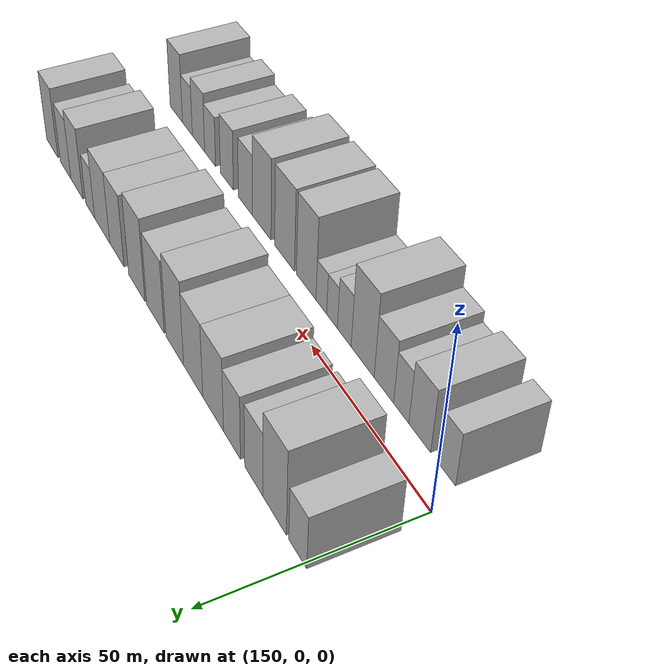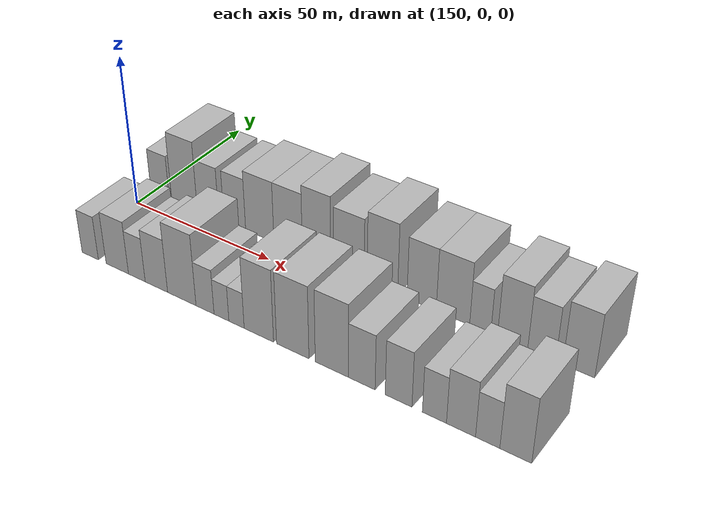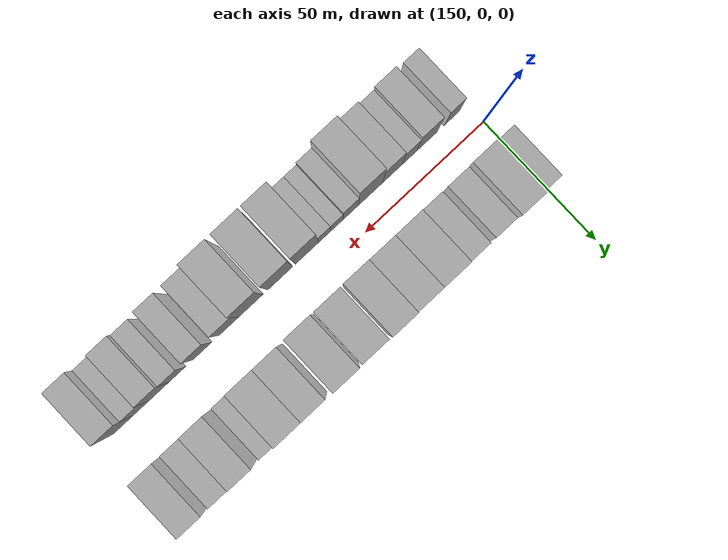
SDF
<sdf version="1.6">
 <world name="default">
  <model name="building_16">
   <static>1</static>
   <pose>152.4874 17.5000 0 0.000000 0.000000 1.570796</pose>
   <link name="link">
    <pose>0 0 7.50 0 0 0</pose>
    <collision name="collision"><geometry><box><size>20.0000 7.4232 15.0000</size></box></geometry></collision>
    <visual name="visual">
     <cast_shadows>0</cast_shadows>
     <geometry><box><size>20.0000 7.4232 15.0000</size></box></geometry>
     <material>
      <script>
       <uri>model://HANNAS_wall/materials/scripts</uri>
       <uri>model://HANNAS_wall/materials/textures</uri>
       <name>vrc/HANNAS_wall</name>
      </script>
     </material>
    </visual>
   </link>
  </model>
  <model name="building_17">
   <static>1</static>
   <pose>162.2632 17.5000 0 0.000000 0.000000 1.570796</pose>
   <link name="link">
    <pose>0 0 12.00 0 0 0</pose>
    <collision name="collision"><geometry><box><size>20.0000 10.1284 24.0000</size></box></geometry></collision>
    <visual name="visual">
     <cast_shadows>0</cast_shadows>
     <geometry><box><size>20.0000 10.1284 24.0000</size></box></geometry>
     <material>
      <script>
       <uri>model://HANNAS_wall/materials/scripts</uri>
       <uri>model://HANNAS_wall/materials/textures</uri>
       <name>vrc/HANNAS_wall</name>
      </script>
     </material>
    </visual>
   </link>
  </model>
  <model name="building_18">
   <static>1</static>
   <pose>171.4944 17.5000 0 0.000000 0.000000 1.570796</pose>
   <link name="link">
    <pose>0 0 9.00 0 0 0</pose>
    <collision name="collision"><geometry><box><size>20.0000 8.3341 18.0000</size></box></geometry></collision>
    <visual name="visual">
     <cast_shadows>0</cast_shadows>
     <geometry><box><size>20.0000 8.3341 18.0000</size></box></geometry>
     <material>
      <script>
       <uri>model://HANNAS_wall/materials/scripts</uri>
       <uri>model://HANNAS_wall/materials/textures</uri>
       <name>vrc/HANNAS_wall</name>
      </script>
     </material>
    </visual>
   </link>
  </model>
  <model name="building_19">
   <static>1</static>
   <pose>181.7442 17.5000 0 0.000000 0.000000 1.570796</pose>
   <link name="link">
    <pose>0 0 9.00 0 0 0</pose>
    <collision name="collision"><geometry><box><size>20.0000 8.1655 18.0000</size></box></geometry></collision>
    <visual name="visual">
     <cast_shadows>0</cast_shadows>
     <geometry><box><size>20.0000 8.1655 18.0000</size></box></geometry>
     <material>
      <script>
       <uri>model://HANNAS_wall/materials/scripts</uri>
       <uri>model://HANNAS_wall/materials/textures</uri>
       <name>vrc/HANNAS_wall</name>
      </script>
     </material>
    </visual>
   </link>
  </model>
  <model name="building_20">
   <static>1</static>
   <pose>191.0521 17.5000 0 0.000000 0.000000 1.570796</pose>
   <link name="link">
    <pose>0 0 10.50 0 0 0</pose>
    <collision name="collision"><geometry><box><size>20.0000 10.4504 21.0000</size></box></geometry></collision>
    <visual name="visual">
     <cast_shadows>0</cast_shadows>
     <geometry><box><size>20.0000 10.4504 21.0000</size></box></geometry>
     <material>
      <script>
       <uri>model://HANNAS_wall/materials/scripts</uri>
       <uri>model://HANNAS_wall/materials/textures</uri>
       <name>vrc/HANNAS_wall</name>
      </script>
     </material>
    </visual>
   </link>
  </model>
  <model name="building_21">
   <static>1</static>
   <pose>201.3887 17.5000 0 0.000000 0.000000 1.570796</pose>
   <link name="link">
    <pose>0 0 10.50 0 0 0</pose>
    <collision name="collision"><geometry><box><size>20.0000 10.2229 21.0000</size></box></geometry></collision>
    <visual name="visual">
     <cast_shadows>0</cast_shadows>
     <geometry><box><size>20.0000 10.2229 21.0000</size></box></geometry>
     <material>
      <script>
       <uri>model://HANNAS_wall/materials/scripts</uri>
       <uri>model://HANNAS_wall/materials/textures</uri>
       <name>vrc/HANNAS_wall</name>
      </script>
     </material>
    </visual>
   </link>
  </model>
  <model name="building_22">
   <static>1</static>
   <pose>211.4315 17.5000 0 0.000000 0.000000 1.570796</pose>
   <link name="link">
    <pose>0 0 12.00 0 0 0</pose>
    <collision name="collision"><geometry><box><size>20.0000 9.8627 24.0000</size></box></geometry></collision>
    <visual name="visual">
     <cast_shadows>0</cast_shadows>
     <geometry><box><size>20.0000 9.8627 24.0000</size></box></geometry>
     <material>
      <script>
       <uri>model://HANNAS_wall/materials/scripts</uri>
       <uri>model://HANNAS_wall/materials/textures</uri>
       <name>vrc/HANNAS_wall</name>
      </script>
     </material>
    </visual>
   </link>
  </model>
  <model name="building_23">
   <static>1</static>
   <pose>222.5453 17.5000 0 0.000000 0.000000 1.570796</pose>
   <link name="link">
    <pose>0 0 10.50 0 0 0</pose>
    <collision name="collision"><geometry><box><size>20.0000 10.3650 21.0000</size></box></geometry></collision>
    <visual name="visual">
     <cast_shadows>0</cast_shadows>
     <geometry><box><size>20.0000 10.3650 21.0000</size></box></geometry>
     <material>
      <script>
       <uri>model://HANNAS_wall/materials/scripts</uri>
       <uri>model://HANNAS_wall/materials/textures</uri>
       <name>vrc/HANNAS_wall</name>
      </script>
     </material>
    </visual>
   </link>
  </model>
  <model name="building_24">
   <static>1</static>
   <pose>233.7784 17.5000 0 0.000000 0.000000 1.570796</pose>
   <link name="link">
    <pose>0 0 12.00 0 0 0</pose>
    <collision name="collision"><geometry><box><size>20.0000 10.1011 24.0000</size></box></geometry></collision>
    <visual name="visual">
     <cast_shadows>0</cast_shadows>
     <geometry><box><size>20.0000 10.1011 24.0000</size></box></geometry>
     <material>
      <script>
       <uri>model://HANNAS_wall/materials/scripts</uri>
       <uri>model://HANNAS_wall/materials/textures</uri>
       <name>vrc/HANNAS_wall</name>
      </script>
     </material>
    </visual>
   </link>
  </model>
  <model name="building_25">
   <static>1</static>
   <pose>246.5001 17.5000 0 0.000000 0.000000 1.570796</pose>
   <link name="link">
    <pose>0 0 10.50 0 0 0</pose>
    <collision name="collision"><geometry><box><size>20.0000 9.3423 21.0000</size></box></geometry></collision>
    <visual name="visual">
     <cast_shadows>0</cast_shadows>
     <geometry><box><size>20.0000 9.3423 21.0000</size></box></geometry>
     <material>
      <script>
       <uri>model://HANNAS_wall/materials/scripts</uri>
       <uri>model://HANNAS_wall/materials/textures</uri>
       <name>vrc/HANNAS_wall</name>
      </script>
     </material>
    </visual>
   </link>
  </model>
  <model name="building_26">
   <static>1</static>
   <pose>256.3676 17.5000 0 0.000000 0.000000 1.570796</pose>
   <link name="link">
    <pose>0 0 10.50 0 0 0</pose>
    <collision name="collision"><geometry><box><size>20.0000 10.3927 21.0000</size></box></geometry></collision>
    <visual name="visual">
     <cast_shadows>0</cast_shadows>
     <geometry><box><size>20.0000 10.3927 21.0000</size></box></geometry>
     <material>
      <script>
       <uri>model://HANNAS_wall/materials/scripts</uri>
       <uri>model://HANNAS_wall/materials/textures</uri>
       <name>vrc/HANNAS_wall</name>
      </script>
     </material>
    </visual>
   </link>
  </model>
  <model name="building_27">
   <static>1</static>
   <pose>264.7600 17.5000 0 0.000000 0.000000 1.570796</pose>
   <link name="link">
    <pose>0 0 7.50 0 0 0</pose>
    <collision name="collision"><geometry><box><size>20.0000 6.3921 15.0000</size></box></geometry></collision>
    <visual name="visual">
     <cast_shadows>0</cast_shadows>
     <geometry><box><size>20.0000 6.3921 15.0000</size></box></geometry>
     <material>
      <script>
       <uri>model://HANNAS_wall/materials/scripts</uri>
       <uri>model://HANNAS_wall/materials/textures</uri>
       <name>vrc/HANNAS_wall</name>
      </script>
     </material>
    </visual>
   </link>
  </model>
  <model name="building_28">
   <static>1</static>
   <pose>274.4199 17.5000 0 0.000000 0.000000 1.570796</pose>
   <link name="link">
    <pose>0 0 10.50 0 0 0</pose>
    <collision name="collision"><geometry><box><size>20.0000 8.9277 21.0000</size></box></geometry></collision>
    <visual name="visual">
     <cast_shadows>0</cast_shadows>
     <geometry><box><size>20.0000 8.9277 21.0000</size></box></geometry>
     <material>
      <script>
       <uri>model://HANNAS_wall/materials/scripts</uri>
       <uri>model://HANNAS_wall/materials/textures</uri>
       <name>vrc/HANNAS_wall</name>
      </script>
     </material>
    </visual>
   </link>
  </model>
  <model name="building_29">
   <static>1</static>
   <pose>282.9135 17.5000 0 0.000000 0.000000 1.570796</pose>
   <link name="link">
    <pose>0 0 9.00 0 0 0</pose>
    <collision name="collision"><geometry><box><size>20.0000 8.0595 18.0000</size></box></geometry></collision>
    <visual name="visual">
     <cast_shadows>0</cast_shadows>
     <geometry><box><size>20.0000 8.0595 18.0000</size></box></geometry>
     <material>
      <script>
       <uri>model://HANNAS_wall/materials/scripts</uri>
       <uri>model://HANNAS_wall/materials/textures</uri>
       <name>vrc/HANNAS_wall</name>
      </script>
     </material>
    </visual>
   </link>
  </model>
  <model name="building_30">
   <static>1</static>
   <pose>293.4200 17.5000 0 0.000000 0.000000 1.570796</pose>
   <link name="link">
    <pose>0 0 10.50 0 0 0</pose>
    <collision name="collision"><geometry><box><size>20.0000 8.9536 21.0000</size></box></geometry></collision>
    <visual name="visual">
     <cast_shadows>0</cast_shadows>
     <geometry><box><size>20.0000 8.9536 21.0000</size></box></geometry>
     <material>
      <script>
       <uri>model://HANNAS_wall/materials/scripts</uri>
       <uri>model://HANNAS_wall/materials/textures</uri>
       <name>vrc/HANNAS_wall</name>
      </script>
     </material>
    </visual>
   </link>
  </model>
  <model name="building_46">
   <static>1</static>
   <pose>156.6527 -17.5000 0 0.000000 0.000000 1.570796</pose>
   <link name="link">
    <pose>0 0 7.50 0 0 0</pose>
    <collision name="collision"><geometry><box><size>20.0000 6.3372 15.0000</size></box></geometry></collision>
    <visual name="visual">
     <cast_shadows>0</cast_shadows>
     <geometry><box><size>20.0000 6.3372 15.0000</size></box></geometry>
     <material>
      <script>
       <uri>model://HANNAS_wall/materials/scripts</uri>
       <uri>model://HANNAS_wall/materials/textures</uri>
       <name>vrc/HANNAS_wall</name>
      </script>
     </material>
    </visual>
   </link>
  </model>
  <model name="building_47">
   <static>1</static>
   <pose>167.0912 -17.5000 0 0.000000 0.000000 1.570796</pose>
   <link name="link">
    <pose>0 0 9.00 0 0 0</pose>
    <collision name="collision"><geometry><box><size>20.0000 8.5398 18.0000</size></box></geometry></collision>
    <visual name="visual">
     <cast_shadows>0</cast_shadows>
     <geometry><box><size>20.0000 8.5398 18.0000</size></box></geometry>
     <material>
      <script>
       <uri>model://HANNAS_wall/materials/scripts</uri>
       <uri>model://HANNAS_wall/materials/textures</uri>
       <name>vrc/HANNAS_wall</name>
      </script>
     </material>
    </visual>
   </link>
  </model>
  <model name="building_48">
   <static>1</static>
   <pose>174.4822 -17.5000 0 0.000000 0.000000 1.570796</pose>
   <link name="link">
    <pose>0 0 7.50 0 0 0</pose>
    <collision name="collision"><geometry><box><size>20.0000 6.2421 15.0000</size></box></geometry></collision>
    <visual name="visual">
     <cast_shadows>0</cast_shadows>
     <geometry><box><size>20.0000 6.2421 15.0000</size></box></geometry>
     <material>
      <script>
       <uri>model://HANNAS_wall/materials/scripts</uri>
       <uri>model://HANNAS_wall/materials/textures</uri>
       <name>vrc/HANNAS_wall</name>
      </script>
     </material>
    </visual>
   </link>
  </model>
  <model name="building_49">
   <static>1</static>
   <pose>181.7102 -17.5000 0 0.000000 0.000000 1.570796</pose>
   <link name="link">
    <pose>0 0 9.00 0 0 0</pose>
    <collision name="collision"><geometry><box><size>20.0000 8.2139 18.0000</size></box></geometry></collision>
    <visual name="visual">
     <cast_shadows>0</cast_shadows>
     <geometry><box><size>20.0000 8.2139 18.0000</size></box></geometry>
     <material>
      <script>
       <uri>model://HANNAS_wall/materials/scripts</uri>
       <uri>model://HANNAS_wall/materials/textures</uri>
       <name>vrc/HANNAS_wall</name>
      </script>
     </material>
    </visual>
   </link>
  </model>
  <model name="building_50">
   <static>1</static>
   <pose>190.8973 -17.5000 0 0.000000 0.000000 1.570796</pose>
   <link name="link">
    <pose>0 0 12.00 0 0 0</pose>
    <collision name="collision"><geometry><box><size>20.0000 10.1602 24.0000</size></box></geometry></collision>
    <visual name="visual">
     <cast_shadows>0</cast_shadows>
     <geometry><box><size>20.0000 10.1602 24.0000</size></box></geometry>
     <material>
      <script>
       <uri>model://HANNAS_wall/materials/scripts</uri>
       <uri>model://HANNAS_wall/materials/textures</uri>
       <name>vrc/HANNAS_wall</name>
      </script>
     </material>
    </visual>
   </link>
  </model>
  <model name="building_51">
   <static>1</static>
   <pose>199.1300 -17.5000 0 0.000000 0.000000 1.570796</pose>
   <link name="link">
    <pose>0 0 7.50 0 0 0</pose>
    <collision name="collision"><geometry><box><size>20.0000 6.3051 15.0000</size></box></geometry></collision>
    <visual name="visual">
     <cast_shadows>0</cast_shadows>
     <geometry><box><size>20.0000 6.3051 15.0000</size></box></geometry>
     <material>
      <script>
       <uri>model://HANNAS_wall/materials/scripts</uri>
       <uri>model://HANNAS_wall/materials/textures</uri>
       <name>vrc/HANNAS_wall</name>
      </script>
     </material>
    </visual>
   </link>
  </model>
  <model name="building_52">
   <static>1</static>
   <pose>204.8406 -17.5000 0 0.000000 0.000000 1.570796</pose>
   <link name="link">
    <pose>0 0 6.00 0 0 0</pose>
    <collision name="collision"><geometry><box><size>20.0000 5.1161 12.0000</size></box></geometry></collision>
    <visual name="visual">
     <cast_shadows>0</cast_shadows>
     <geometry><box><size>20.0000 5.1161 12.0000</size></box></geometry>
     <material>
      <script>
       <uri>model://HANNAS_wall/materials/scripts</uri>
       <uri>model://HANNAS_wall/materials/textures</uri>
       <name>vrc/HANNAS_wall</name>
      </script>
     </material>
    </visual>
   </link>
  </model>
  <model name="building_53">
   <static>1</static>
   <pose>209.9921 -17.5000 0 0.000000 0.000000 1.570796</pose>
   <link name="link">
    <pose>0 0 6.00 0 0 0</pose>
    <collision name="collision"><geometry><box><size>20.0000 5.1870 12.0000</size></box></geometry></collision>
    <visual name="visual">
     <cast_shadows>0</cast_shadows>
     <geometry><box><size>20.0000 5.1870 12.0000</size></box></geometry>
     <material>
      <script>
       <uri>model://HANNAS_wall/materials/scripts</uri>
       <uri>model://HANNAS_wall/materials/textures</uri>
       <name>vrc/HANNAS_wall</name>
      </script>
     </material>
    </visual>
   </link>
  </model>
  <model name="building_54">
   <static>1</static>
   <pose>217.4739 -17.5000 0 0.000000 0.000000 1.570796</pose>
   <link name="link">
    <pose>0 0 12.00 0 0 0</pose>
    <collision name="collision"><geometry><box><size>20.0000 9.7765 24.0000</size></box></geometry></collision>
    <visual name="visual">
     <cast_shadows>0</cast_shadows>
     <geometry><box><size>20.0000 9.7765 24.0000</size></box></geometry>
     <material>
      <script>
       <uri>model://HANNAS_wall/materials/scripts</uri>
       <uri>model://HANNAS_wall/materials/textures</uri>
       <name>vrc/HANNAS_wall</name>
      </script>
     </material>
    </visual>
   </link>
  </model>
  <model name="building_55">
   <static>1</static>
   <pose>228.5708 -17.5000 0 0.000000 0.000000 1.570796</pose>
   <link name="link">
    <pose>0 0 12.00 0 0 0</pose>
    <collision name="collision"><geometry><box><size>20.0000 10.4175 24.0000</size></box></geometry></collision>
    <visual name="visual">
     <cast_shadows>0</cast_shadows>
     <geometry><box><size>20.0000 10.4175 24.0000</size></box></geometry>
     <material>
      <script>
       <uri>model://HANNAS_wall/materials/scripts</uri>
       <uri>model://HANNAS_wall/materials/textures</uri>
       <name>vrc/HANNAS_wall</name>
      </script>
     </material>
    </visual>
   </link>
  </model>
  <model name="building_56">
   <static>1</static>
   <pose>240.9191 -17.5000 0 0.000000 0.000000 1.570796</pose>
   <link name="link">
    <pose>0 0 12.00 0 0 0</pose>
    <collision name="collision"><geometry><box><size>20.0000 10.2790 24.0000</size></box></geometry></collision>
    <visual name="visual">
     <cast_shadows>0</cast_shadows>
     <geometry><box><size>20.0000 10.2790 24.0000</size></box></geometry>
     <material>
      <script>
       <uri>model://HANNAS_wall/materials/scripts</uri>
       <uri>model://HANNAS_wall/materials/textures</uri>
       <name>vrc/HANNAS_wall</name>
      </script>
     </material>
    </visual>
   </link>
  </model>
  <model name="building_57">
   <static>1</static>
   <pose>250.1173 -17.5000 0 0.000000 0.000000 1.570796</pose>
   <link name="link">
    <pose>0 0 9.00 0 0 0</pose>
    <collision name="collision"><geometry><box><size>20.0000 8.1175 18.0000</size></box></geometry></collision>
    <visual name="visual">
     <cast_shadows>0</cast_shadows>
     <geometry><box><size>20.0000 8.1175 18.0000</size></box></geometry>
     <material>
      <script>
       <uri>model://HANNAS_wall/materials/scripts</uri>
       <uri>model://HANNAS_wall/materials/textures</uri>
       <name>vrc/HANNAS_wall</name>
      </script>
     </material>
    </visual>
   </link>
  </model>
  <model name="building_58">
   <static>1</static>
   <pose>261.1020 -17.5000 0 0.000000 0.000000 1.570796</pose>
   <link name="link">
    <pose>0 0 9.00 0 0 0</pose>
    <collision name="collision"><geometry><box><size>20.0000 7.8519 18.0000</size></box></geometry></collision>
    <visual name="visual">
     <cast_shadows>0</cast_shadows>
     <geometry><box><size>20.0000 7.8519 18.0000</size></box></geometry>
     <material>
      <script>
       <uri>model://HANNAS_wall/materials/scripts</uri>
       <uri>model://HANNAS_wall/materials/textures</uri>
       <name>vrc/HANNAS_wall</name>
      </script>
     </material>
    </visual>
   </link>
  </model>
  <model name="building_59">
   <static>1</static>
   <pose>271.4540 -17.5000 0 0.000000 0.000000 1.570796</pose>
   <link name="link">
    <pose>0 0 7.50 0 0 0</pose>
    <collision name="collision"><geometry><box><size>20.0000 6.8521 15.0000</size></box></geometry></collision>
    <visual name="visual">
     <cast_shadows>0</cast_shadows>
     <geometry><box><size>20.0000 6.8521 15.0000</size></box></geometry>
     <material>
      <script>
       <uri>model://HANNAS_wall/materials/scripts</uri>
       <uri>model://HANNAS_wall/materials/textures</uri>
       <name>vrc/HANNAS_wall</name>
      </script>
     </material>
    </visual>
   </link>
  </model>
  <model name="building_60">
   <static>1</static>
   <pose>278.9196 -17.5000 0 0.000000 0.000000 1.570796</pose>
   <link name="link">
    <pose>0 0 9.00 0 0 0</pose>
    <collision name="collision"><geometry><box><size>20.0000 8.0791 18.0000</size></box></geometry></collision>
    <visual name="visual">
     <cast_shadows>0</cast_shadows>
     <geometry><box><size>20.0000 8.0791 18.0000</size></box></geometry>
     <material>
      <script>
       <uri>model://HANNAS_wall/materials/scripts</uri>
       <uri>model://HANNAS_wall/materials/textures</uri>
       <name>vrc/HANNAS_wall</name>
      </script>
     </material>
    </visual>
   </link>
  </model>
  <model name="building_61">
   <static>1</static>
   <pose>286.2541 -17.5000 0 0.000000 0.000000 1.570796</pose>
   <link name="link">
    <pose>0 0 7.50 0 0 0</pose>
    <collision name="collision"><geometry><box><size>20.0000 6.5898 15.0000</size></box></geometry></collision>
    <visual name="visual">
     <cast_shadows>0</cast_shadows>
     <geometry><box><size>20.0000 6.5898 15.0000</size></box></geometry>
     <material>
      <script>
       <uri>model://HANNAS_wall/materials/scripts</uri>
       <uri>model://HANNAS_wall/materials/textures</uri>
       <name>vrc/HANNAS_wall</name>
      </script>
     </material>
    </visual>
   </link>
  </model>
  <model name="building_62">
   <static>1</static>
   <pose>293.7851 -17.5000 0 0.000000 0.000000 1.570796</pose>
   <link name="link">
    <pose>0 0 10.50 0 0 0</pose>
    <collision name="collision"><geometry><box><size>20.0000 8.4722 21.0000</size></box></geometry></collision>
    <visual name="visual">
     <cast_shadows>0</cast_shadows>
     <geometry><box><size>20.0000 8.4722 21.0000</size></box></geometry>
     <material>
      <script>
       <uri>model://HANNAS_wall/materials/scripts</uri>
       <uri>model://HANNAS_wall/materials/textures</uri>
       <name>vrc/HANNAS_wall</name>
      </script>
     </material>
    </visual>
   </link>
  </model>
 </world>
</sdf>
